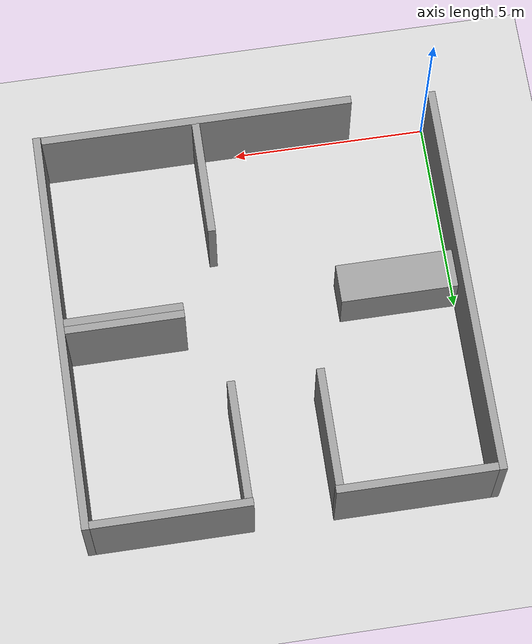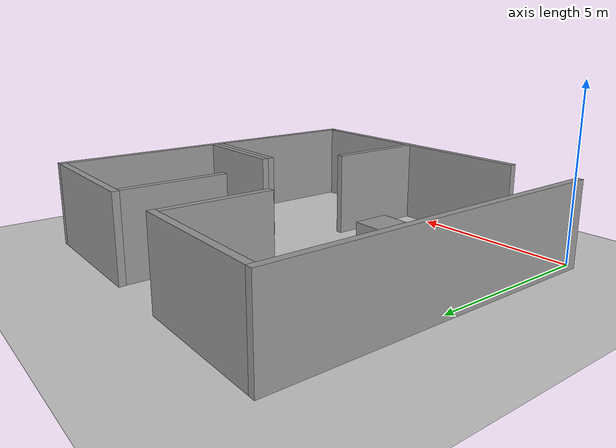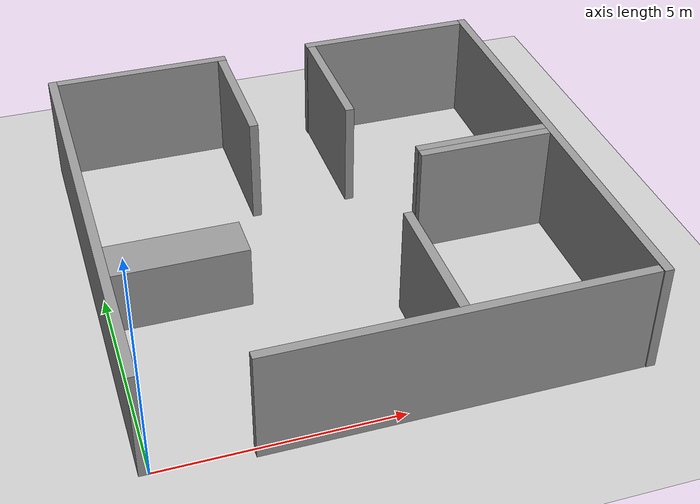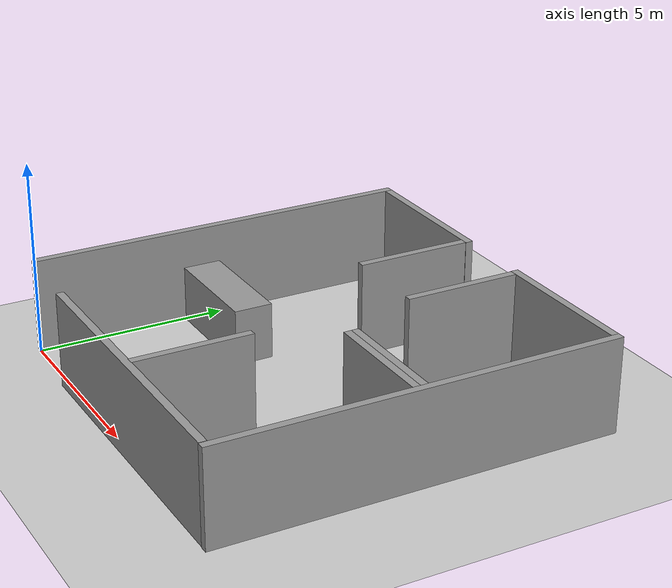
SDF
<sdf version="1.7">
 <world name="default">
  <light name="sun" type="directional">
   <pose>0 0 10 0 -0 0</pose>
   <diffuse>0.8 0.8 0.8 1</diffuse>
   <specular>0.2 0.2 0.2 1</specular>
   <attenuation>
    <range>1000</range>
    <constant>0.9</constant>
    <linear>0.01</linear>
    <quadratic>0.001</quadratic>
   </attenuation>
   <direction>-0.5 0.1 -0.9</direction>
   <spot><inner_angle>0</inner_angle><outer_angle>0</outer_angle><falloff>0</falloff></spot>
  </light>
  <model name="ground_plane">
   <static>1</static>
   <link name="link">
    <collision name="collision">
     <geometry><plane><normal>0 0 1</normal><size>100 100</size></plane></geometry>
     <surface>
      <contact><collide_bitmask>65535</collide_bitmask></contact>
      <friction><ode><mu>100</mu><mu2>50</mu2></ode></friction>
     </surface>
    </collision>
    <visual name="visual">
     <cast_shadows>0</cast_shadows>
     <geometry><plane><normal>0 0 1</normal><size>100 100</size></plane></geometry>
     <material>
      <script><uri>file://media/materials/scripts/gazebo.material</uri><name>Gazebo/Grey</name></script>
     </material>
    </visual>
   </link>
  </model>
  <gravity>0 0 -9.8</gravity>
  <magnetic_field>6e-06 2.3e-05 -4.2e-05</magnetic_field>
  <atmosphere type="adiabatic"/>
  <physics type="ode">
   <max_step_size>0.001</max_step_size>
   <real_time_factor>1</real_time_factor>
   <real_time_update_rate>1000</real_time_update_rate>
  </physics>
  <scene><ambient>0.4 0.4 0.4 1</ambient><background>0.7 0.7 0.7 1</background><shadows>1</shadows></scene>
  <spherical_coordinates>
   <surface_model>EARTH_WGS84</surface_model>
   <latitude_deg>0</latitude_deg>
   <longitude_deg>0</longitude_deg>
   <elevation>0</elevation>
   <heading_deg>0</heading_deg>
  </spherical_coordinates>
  <model name="grey_wall">
   <link name="link">
    <pose>0 0 1.4 0 -0 0</pose>
    <inertial>
     <mass>1</mass>
     <inertia><ixx>1</ixx><ixy>0</ixy><ixz>0</ixz><iyy>1</iyy><iyz>0</iyz><izz>1</izz></inertia>
    </inertial>
    <visual name="visual">
     <cast_shadows>0</cast_shadows>
     <geometry><box><size>8 0.2 2.5</size></box></geometry>
     <material>
      <script>
       <uri>model://grey_wall/materials/scripts</uri>
       <uri>model://grey_wall/materials/textures</uri>
       <name>vrc/grey_wall</name>
      </script>
      <shader type="pixel"><normal_map>__default__</normal_map></shader>
      <ambient>1 1 1 1</ambient>
      <diffuse>1 1 1 1</diffuse>
      <specular>0 0 0 1</specular>
      <emissive>0 0 0 1</emissive>
     </material>
    </visual>
    <collision name="collision">
     <geometry><box><size>8 0.2 2.5</size></box></geometry>
     <surface>
      <friction>
       <ode><mu>1</mu><mu2>1</mu2><fdir1>0 0 0</fdir1><slip1>0</slip1><slip2>0</slip2></ode>
       <torsional>
        <coefficient>1</coefficient>
        <patch_radius>0</patch_radius>
        <surface_radius>0</surface_radius>
        <use_patch_radius>1</use_patch_radius>
        <ode><slip>0</slip></ode>
       </torsional>
      </friction>
      <bounce><restitution_coefficient>0</restitution_coefficient><threshold>1e+06</threshold></bounce>
      <contact>
       <collide_without_contact>0</collide_without_contact>
       <collide_without_contact_bitmask>1</collide_without_contact_bitmask>
       <collide_bitmask>1</collide_bitmask>
       <ode>
        <soft_cfm>0</soft_cfm>
        <soft_erp>0.2</soft_erp>
        <kp>1e+13</kp>
        <kd>1</kd>
        <max_vel>0.01</max_vel>
        <min_depth>0</min_depth>
       </ode>
       <bullet>
        <split_impulse>1</split_impulse>
        <split_impulse_penetration_threshold>-0.01</split_impulse_penetration_threshold>
        <soft_cfm>0</soft_cfm>
        <soft_erp>0.2</soft_erp>
        <kp>1e+13</kp>
        <kd>1</kd>
       </bullet>
      </contact>
     </surface>
    </collision>
   </link>
   <static>1</static>
   <pose>5.96877 -0.088038 -0.2 0 -0 0</pose>
  </model>
  <model name="grey_wall_clone_clone_1_clone_0">
   <link name="link">
    <pose>0 0 1.4 0 -0 0</pose>
    <inertial>
     <mass>1</mass>
     <inertia><ixx>1</ixx><ixy>0</ixy><ixz>0</ixz><iyy>1</iyy><iyz>0</iyz><izz>1</izz></inertia>
    </inertial>
    <visual name="visual">
     <cast_shadows>0</cast_shadows>
     <geometry><box><size>3 0.2 2.5</size></box></geometry>
     <material>
      <script>
       <uri>model://grey_wall/materials/scripts</uri>
       <uri>model://grey_wall/materials/textures</uri>
       <name>vrc/grey_wall</name>
      </script>
      <shader type="pixel"><normal_map>__default__</normal_map></shader>
      <ambient>1 1 1 1</ambient>
      <diffuse>1 1 1 1</diffuse>
      <specular>0 0 0 1</specular>
      <emissive>0 0 0 1</emissive>
     </material>
    </visual>
    <collision name="collision">
     <geometry><box><size>3 0.2 2.5</size></box></geometry>
     <surface>
      <friction>
       <ode><mu>1</mu><mu2>1</mu2><fdir1>0 0 0</fdir1><slip1>0</slip1><slip2>0</slip2></ode>
       <torsional>
        <coefficient>1</coefficient>
        <patch_radius>0</patch_radius>
        <surface_radius>0</surface_radius>
        <use_patch_radius>1</use_patch_radius>
        <ode><slip>0</slip></ode>
       </torsional>
      </friction>
      <bounce><restitution_coefficient>0</restitution_coefficient><threshold>1e+06</threshold></bounce>
      <contact>
       <collide_without_contact>0</collide_without_contact>
       <collide_without_contact_bitmask>1</collide_without_contact_bitmask>
       <collide_bitmask>1</collide_bitmask>
       <ode>
        <soft_cfm>0</soft_cfm>
        <soft_erp>0.2</soft_erp>
        <kp>1e+13</kp>
        <kd>1</kd>
        <max_vel>0.01</max_vel>
        <min_depth>0</min_depth>
       </ode>
       <bullet>
        <split_impulse>1</split_impulse>
        <split_impulse_penetration_threshold>-0.01</split_impulse_penetration_threshold>
        <soft_cfm>0</soft_cfm>
        <soft_erp>0.2</soft_erp>
        <kp>1e+13</kp>
        <kd>1</kd>
       </bullet>
      </contact>
     </surface>
    </collision>
   </link>
   <static>1</static>
   <pose>6.01231 1.49522 -0.2 0 -0 1.57</pose>
  </model>
  <model name="grey_wall_clone_clone_1_clone_1">
   <link name="link">
    <pose>0 0 1.4 0 -0 0</pose>
    <inertial>
     <mass>1</mass>
     <inertia><ixx>1</ixx><ixy>0</ixy><ixz>0</ixz><iyy>1</iyy><iyz>0</iyz><izz>1</izz></inertia>
    </inertial>
    <visual name="visual">
     <cast_shadows>0</cast_shadows>
     <geometry><box><size>3 0.2 2.5</size></box></geometry>
     <material>
      <script>
       <uri>model://grey_wall/materials/scripts</uri>
       <uri>model://grey_wall/materials/textures</uri>
       <name>vrc/grey_wall</name>
      </script>
      <shader type="pixel"><normal_map>__default__</normal_map></shader>
      <ambient>1 1 1 1</ambient>
      <diffuse>1 1 1 1</diffuse>
      <specular>0 0 0 1</specular>
      <emissive>0 0 0 1</emissive>
     </material>
    </visual>
    <collision name="collision">
     <geometry><box><size>3 0.2 2.5</size></box></geometry>
     <surface>
      <friction>
       <ode><mu>1</mu><mu2>1</mu2><fdir1>0 0 0</fdir1><slip1>0</slip1><slip2>0</slip2></ode>
       <torsional>
        <coefficient>1</coefficient>
        <patch_radius>0</patch_radius>
        <surface_radius>0</surface_radius>
        <use_patch_radius>1</use_patch_radius>
        <ode><slip>0</slip></ode>
       </torsional>
      </friction>
      <bounce><restitution_coefficient>0</restitution_coefficient><threshold>1e+06</threshold></bounce>
      <contact>
       <collide_without_contact>0</collide_without_contact>
       <collide_without_contact_bitmask>1</collide_without_contact_bitmask>
       <collide_bitmask>1</collide_bitmask>
       <ode>
        <soft_cfm>0</soft_cfm>
        <soft_erp>0.2</soft_erp>
        <kp>1e+13</kp>
        <kd>1</kd>
        <max_vel>0.01</max_vel>
        <min_depth>0</min_depth>
       </ode>
       <bullet>
        <split_impulse>1</split_impulse>
        <split_impulse_penetration_threshold>-0.01</split_impulse_penetration_threshold>
        <soft_cfm>0</soft_cfm>
        <soft_erp>0.2</soft_erp>
        <kp>1e+13</kp>
        <kd>1</kd>
       </bullet>
      </contact>
     </surface>
    </collision>
   </link>
   <static>1</static>
   <pose>3.88915 8.50009 -0.2 0 -0 1.57</pose>
  </model>
  <model name="grey_wall_clone_clone_0">
   <link name="link">
    <pose>0 0 1.4 0 -0 0</pose>
    <inertial>
     <mass>1</mass>
     <inertia><ixx>1</ixx><ixy>0</ixy><ixz>0</ixz><iyy>1</iyy><iyz>0</iyz><izz>1</izz></inertia>
    </inertial>
    <visual name="visual">
     <cast_shadows>0</cast_shadows>
     <geometry><box><size>4 0.2 2.5</size></box></geometry>
     <material>
      <script>
       <uri>model://grey_wall/materials/scripts</uri>
       <uri>model://grey_wall/materials/textures</uri>
       <name>vrc/grey_wall</name>
      </script>
      <shader type="pixel"><normal_map>__default__</normal_map></shader>
      <ambient>1 1 1 1</ambient>
      <diffuse>1 1 1 1</diffuse>
      <specular>0 0 0 1</specular>
      <emissive>0 0 0 1</emissive>
     </material>
    </visual>
    <collision name="collision">
     <geometry><box><size>4 0.2 2.5</size></box></geometry>
     <surface>
      <friction>
       <ode><mu>1</mu><mu2>1</mu2><fdir1>0 0 0</fdir1><slip1>0</slip1><slip2>0</slip2></ode>
       <torsional>
        <coefficient>1</coefficient>
        <patch_radius>0</patch_radius>
        <surface_radius>0</surface_radius>
        <use_patch_radius>1</use_patch_radius>
        <ode><slip>0</slip></ode>
       </torsional>
      </friction>
      <bounce><restitution_coefficient>0</restitution_coefficient><threshold>1e+06</threshold></bounce>
      <contact>
       <collide_without_contact>0</collide_without_contact>
       <collide_without_contact_bitmask>1</collide_without_contact_bitmask>
       <collide_bitmask>1</collide_bitmask>
       <ode>
        <soft_cfm>0</soft_cfm>
        <soft_erp>0.2</soft_erp>
        <kp>1e+13</kp>
        <kd>1</kd>
        <max_vel>0.01</max_vel>
        <min_depth>0</min_depth>
       </ode>
       <bullet>
        <split_impulse>1</split_impulse>
        <split_impulse_penetration_threshold>-0.01</split_impulse_penetration_threshold>
        <soft_cfm>0</soft_cfm>
        <soft_erp>0.2</soft_erp>
        <kp>1e+13</kp>
        <kd>1</kd>
       </bullet>
      </contact>
     </surface>
    </collision>
   </link>
   <static>1</static>
   <pose>2 10.1 -0.2 0 -0 0</pose>
  </model>
  <model name="grey_wall_clone_clone_0_clone">
   <link name="link">
    <pose>0 0 1.4 0 -0 0</pose>
    <inertial>
     <mass>1</mass>
     <inertia><ixx>1</ixx><ixy>0</ixy><ixz>0</ixz><iyy>1</iyy><iyz>0</iyz><izz>1</izz></inertia>
    </inertial>
    <visual name="visual">
     <cast_shadows>0</cast_shadows>
     <geometry><box><size>4 0.2 2.5</size></box></geometry>
     <material>
      <script>
       <uri>model://grey_wall/materials/scripts</uri>
       <uri>model://grey_wall/materials/textures</uri>
       <name>vrc/grey_wall</name>
      </script>
      <shader type="pixel"><normal_map>__default__</normal_map></shader>
      <ambient>1 1 1 1</ambient>
      <diffuse>1 1 1 1</diffuse>
      <specular>0 0 0 1</specular>
      <emissive>0 0 0 1</emissive>
     </material>
    </visual>
    <collision name="collision">
     <geometry><box><size>4 0.2 2.5</size></box></geometry>
     <surface>
      <friction>
       <ode><mu>1</mu><mu2>1</mu2><fdir1>0 0 0</fdir1><slip1>0</slip1><slip2>0</slip2></ode>
       <torsional>
        <coefficient>1</coefficient>
        <patch_radius>0</patch_radius>
        <surface_radius>0</surface_radius>
        <use_patch_radius>1</use_patch_radius>
        <ode><slip>0</slip></ode>
       </torsional>
      </friction>
      <bounce><restitution_coefficient>0</restitution_coefficient><threshold>1e+06</threshold></bounce>
      <contact>
       <collide_without_contact>0</collide_without_contact>
       <collide_without_contact_bitmask>1</collide_without_contact_bitmask>
       <collide_bitmask>1</collide_bitmask>
       <ode>
        <soft_cfm>0</soft_cfm>
        <soft_erp>0.2</soft_erp>
        <kp>1e+13</kp>
        <kd>1</kd>
        <max_vel>0.01</max_vel>
        <min_depth>0</min_depth>
       </ode>
       <bullet>
        <split_impulse>1</split_impulse>
        <split_impulse_penetration_threshold>-0.01</split_impulse_penetration_threshold>
        <soft_cfm>0</soft_cfm>
        <soft_erp>0.2</soft_erp>
        <kp>1e+13</kp>
        <kd>1</kd>
       </bullet>
      </contact>
     </surface>
    </collision>
   </link>
   <static>1</static>
   <pose>8 10.1 -0.2 0 -0 0</pose>
  </model>
  <model name="grey_wall_clone_clone_1_clone_1_clone">
   <link name="link">
    <pose>0 0 1.4 0 -0 0</pose>
    <inertial>
     <mass>1</mass>
     <inertia><ixx>1</ixx><ixy>0</ixy><ixz>0</ixz><iyy>1</iyy><iyz>0</iyz><izz>1</izz></inertia>
    </inertial>
    <visual name="visual">
     <cast_shadows>0</cast_shadows>
     <geometry><box><size>3 0.2 2.5</size></box></geometry>
     <material>
      <script>
       <uri>model://grey_wall/materials/scripts</uri>
       <uri>model://grey_wall/materials/textures</uri>
       <name>vrc/grey_wall</name>
      </script>
      <shader type="pixel"><normal_map>__default__</normal_map></shader>
      <ambient>1 1 1 1</ambient>
      <diffuse>1 1 1 1</diffuse>
      <specular>0 0 0 1</specular>
      <emissive>0 0 0 1</emissive>
     </material>
    </visual>
    <collision name="collision">
     <geometry><box><size>3 0.2 2.5</size></box></geometry>
     <surface>
      <friction>
       <ode><mu>1</mu><mu2>1</mu2><fdir1>0 0 0</fdir1><slip1>0</slip1><slip2>0</slip2></ode>
       <torsional>
        <coefficient>1</coefficient>
        <patch_radius>0</patch_radius>
        <surface_radius>0</surface_radius>
        <use_patch_radius>1</use_patch_radius>
        <ode><slip>0</slip></ode>
       </torsional>
      </friction>
      <bounce><restitution_coefficient>0</restitution_coefficient><threshold>1e+06</threshold></bounce>
      <contact>
       <collide_without_contact>0</collide_without_contact>
       <collide_without_contact_bitmask>1</collide_without_contact_bitmask>
       <collide_bitmask>1</collide_bitmask>
       <ode>
        <soft_cfm>0</soft_cfm>
        <soft_erp>0.2</soft_erp>
        <kp>1e+13</kp>
        <kd>1</kd>
        <max_vel>0.01</max_vel>
        <min_depth>0</min_depth>
       </ode>
       <bullet>
        <split_impulse>1</split_impulse>
        <split_impulse_penetration_threshold>-0.01</split_impulse_penetration_threshold>
        <soft_cfm>0</soft_cfm>
        <soft_erp>0.2</soft_erp>
        <kp>1e+13</kp>
        <kd>1</kd>
       </bullet>
      </contact>
     </surface>
    </collision>
   </link>
   <static>1</static>
   <pose>8.49454 4.88926 -0.2 0 -0 0</pose>
  </model>
  <model name="grey_wall_clone_clone_1_clone_1_clone_clone">
   <link name="link">
    <pose>0 0 1.4 0 -0 0</pose>
    <inertial>
     <mass>1</mass>
     <inertia><ixx>1</ixx><ixy>0</ixy><ixz>0</ixz><iyy>1</iyy><iyz>0</iyz><izz>1</izz></inertia>
    </inertial>
    <visual name="visual">
     <cast_shadows>0</cast_shadows>
     <geometry><box><size>3 0.2 2.5</size></box></geometry>
     <material>
      <script>
       <uri>model://grey_wall/materials/scripts</uri>
       <uri>model://grey_wall/materials/textures</uri>
       <name>vrc/grey_wall</name>
      </script>
      <shader type="pixel"><normal_map>__default__</normal_map></shader>
      <ambient>1 1 1 1</ambient>
      <diffuse>1 1 1 1</diffuse>
      <specular>0 0 0 1</specular>
      <emissive>0 0 0 1</emissive>
     </material>
    </visual>
    <collision name="collision">
     <geometry><box><size>3 0.2 2.5</size></box></geometry>
     <surface>
      <friction>
       <ode><mu>1</mu><mu2>1</mu2><fdir1>0 0 0</fdir1><slip1>0</slip1><slip2>0</slip2></ode>
       <torsional>
        <coefficient>1</coefficient>
        <patch_radius>0</patch_radius>
        <surface_radius>0</surface_radius>
        <use_patch_radius>1</use_patch_radius>
        <ode><slip>0</slip></ode>
       </torsional>
      </friction>
      <bounce><restitution_coefficient>0</restitution_coefficient><threshold>1e+06</threshold></bounce>
      <contact>
       <collide_without_contact>0</collide_without_contact>
       <collide_without_contact_bitmask>1</collide_without_contact_bitmask>
       <collide_bitmask>1</collide_bitmask>
       <ode>
        <soft_cfm>0</soft_cfm>
        <soft_erp>0.2</soft_erp>
        <kp>1e+13</kp>
        <kd>1</kd>
        <max_vel>0.01</max_vel>
        <min_depth>0</min_depth>
       </ode>
       <bullet>
        <split_impulse>1</split_impulse>
        <split_impulse_penetration_threshold>-0.01</split_impulse_penetration_threshold>
        <soft_cfm>0</soft_cfm>
        <soft_erp>0.2</soft_erp>
        <kp>1e+13</kp>
        <kd>1</kd>
       </bullet>
      </contact>
     </surface>
    </collision>
   </link>
   <static>1</static>
   <pose>6.11414 8.49926 -0.2 0 -0 1.57</pose>
  </model>
  <model name="grey_wall_clone_clone_1_clone_1_clone_clone_0">
   <link name="link">
    <pose>0 0 1.4 0 -0 0</pose>
    <inertial>
     <mass>1</mass>
     <inertia><ixx>1</ixx><ixy>0</ixy><ixz>0</ixz><iyy>1</iyy><iyz>0</iyz><izz>1</izz></inertia>
    </inertial>
    <visual name="visual">
     <cast_shadows>0</cast_shadows>
     <geometry><box><size>3 0.2 2.5</size></box></geometry>
     <material>
      <script>
       <uri>model://grey_wall/materials/scripts</uri>
       <uri>model://grey_wall/materials/textures</uri>
       <name>vrc/grey_wall</name>
      </script>
      <shader type="pixel"><normal_map>__default__</normal_map></shader>
      <ambient>1 1 1 1</ambient>
      <diffuse>1 1 1 1</diffuse>
      <specular>0 0 0 1</specular>
      <emissive>0 0 0 1</emissive>
     </material>
    </visual>
    <collision name="collision">
     <geometry><box><size>3 0.2 2.5</size></box></geometry>
     <surface>
      <friction>
       <ode><mu>1</mu><mu2>1</mu2><fdir1>0 0 0</fdir1><slip1>0</slip1><slip2>0</slip2></ode>
       <torsional>
        <coefficient>1</coefficient>
        <patch_radius>0</patch_radius>
        <surface_radius>0</surface_radius>
        <use_patch_radius>1</use_patch_radius>
        <ode><slip>0</slip></ode>
       </torsional>
      </friction>
      <bounce><restitution_coefficient>0</restitution_coefficient><threshold>1e+06</threshold></bounce>
      <contact>
       <collide_without_contact>0</collide_without_contact>
       <collide_without_contact_bitmask>1</collide_without_contact_bitmask>
       <collide_bitmask>1</collide_bitmask>
       <ode>
        <soft_cfm>0</soft_cfm>
        <soft_erp>0.2</soft_erp>
        <kp>1e+13</kp>
        <kd>1</kd>
        <max_vel>0.01</max_vel>
        <min_depth>0</min_depth>
       </ode>
       <bullet>
        <split_impulse>1</split_impulse>
        <split_impulse_penetration_threshold>-0.01</split_impulse_penetration_threshold>
        <soft_cfm>0</soft_cfm>
        <soft_erp>0.2</soft_erp>
        <kp>1e+13</kp>
        <kd>1</kd>
       </bullet>
      </contact>
     </surface>
    </collision>
   </link>
   <static>1</static>
   <pose>8.49198 5.08423 -0.2 0 -0 0</pose>
  </model>
  <model name="grey_wall_clone_clone_1">
   <link name="link">
    <pose>0 0 1.4 0 -0 0</pose>
    <inertial>
     <mass>1</mass>
     <inertia><ixx>1</ixx><ixy>0</ixy><ixz>0</ixz><iyy>1</iyy><iyz>0</iyz><izz>1</izz></inertia>
    </inertial>
    <visual name="visual">
     <cast_shadows>0</cast_shadows>
     <geometry><box><size>3 1 1.5</size></box></geometry>
     <material>
      <script>
       <uri>model://grey_wall/materials/scripts</uri>
       <uri>model://grey_wall/materials/textures</uri>
       <name>vrc/grey_wall</name>
      </script>
      <shader type="pixel"><normal_map>__default__</normal_map></shader>
      <ambient>1 1 1 1</ambient>
      <diffuse>1 1 1 1</diffuse>
      <specular>0 0 0 1</specular>
      <emissive>0 0 0 1</emissive>
     </material>
    </visual>
    <collision name="collision">
     <geometry><box><size>3 1 1.5</size></box></geometry>
     <surface>
      <friction>
       <ode><mu>1</mu><mu2>1</mu2><fdir1>0 0 0</fdir1><slip1>0</slip1><slip2>0</slip2></ode>
       <torsional>
        <coefficient>1</coefficient>
        <patch_radius>0</patch_radius>
        <surface_radius>0</surface_radius>
        <use_patch_radius>1</use_patch_radius>
        <ode><slip>0</slip></ode>
       </torsional>
      </friction>
      <bounce><restitution_coefficient>0</restitution_coefficient><threshold>1e+06</threshold></bounce>
      <contact>
       <collide_without_contact>0</collide_without_contact>
       <collide_without_contact_bitmask>1</collide_without_contact_bitmask>
       <collide_bitmask>1</collide_bitmask>
       <ode>
        <soft_cfm>0</soft_cfm>
        <soft_erp>0.2</soft_erp>
        <kp>1e+13</kp>
        <kd>1</kd>
        <max_vel>0.01</max_vel>
        <min_depth>0</min_depth>
       </ode>
       <bullet>
        <split_impulse>1</split_impulse>
        <split_impulse_penetration_threshold>-0.01</split_impulse_penetration_threshold>
        <soft_cfm>0</soft_cfm>
        <soft_erp>0.2</soft_erp>
        <kp>1e+13</kp>
        <kd>1</kd>
       </bullet>
      </contact>
     </surface>
    </collision>
   </link>
   <static>1</static>
   <pose>1.5 4.5 -0.7 0 -0 0</pose>
  </model>
  <model name="grey_wall_clone">
   <link name="link">
    <pose>0 0 1.4 0 -0 0</pose>
    <inertial>
     <mass>1</mass>
     <inertia><ixx>1</ixx><ixy>0</ixy><ixz>0</ixz><iyy>1</iyy><iyz>0</iyz><izz>1</izz></inertia>
    </inertial>
    <visual name="visual">
     <cast_shadows>0</cast_shadows>
     <geometry><box><size>10.2 0.2 2.5</size></box></geometry>
     <material>
      <script>
       <uri>model://grey_wall/materials/scripts</uri>
       <uri>model://grey_wall/materials/textures</uri>
       <name>vrc/grey_wall</name>
      </script>
      <shader type="pixel"><normal_map>__default__</normal_map></shader>
      <ambient>1 1 1 1</ambient>
      <diffuse>1 1 1 1</diffuse>
      <specular>0 0 0 1</specular>
      <emissive>0 0 0 1</emissive>
     </material>
    </visual>
    <collision name="collision">
     <geometry><box><size>10.2 0.2 2.5</size></box></geometry>
     <surface>
      <friction>
       <ode><mu>1</mu><mu2>1</mu2><fdir1>0 0 0</fdir1><slip1>0</slip1><slip2>0</slip2></ode>
       <torsional>
        <coefficient>1</coefficient>
        <patch_radius>0</patch_radius>
        <surface_radius>0</surface_radius>
        <use_patch_radius>1</use_patch_radius>
        <ode><slip>0</slip></ode>
       </torsional>
      </friction>
      <bounce><restitution_coefficient>0</restitution_coefficient><threshold>1e+06</threshold></bounce>
      <contact>
       <collide_without_contact>0</collide_without_contact>
       <collide_without_contact_bitmask>1</collide_without_contact_bitmask>
       <collide_bitmask>1</collide_bitmask>
       <ode>
        <soft_cfm>0</soft_cfm>
        <soft_erp>0.2</soft_erp>
        <kp>1e+13</kp>
        <kd>1</kd>
        <max_vel>0.01</max_vel>
        <min_depth>0</min_depth>
       </ode>
       <bullet>
        <split_impulse>1</split_impulse>
        <split_impulse_penetration_threshold>-0.01</split_impulse_penetration_threshold>
        <soft_cfm>0</soft_cfm>
        <soft_erp>0.2</soft_erp>
        <kp>1e+13</kp>
        <kd>1</kd>
       </bullet>
      </contact>
     </surface>
    </collision>
   </link>
   <static>1</static>
   <pose>-0.1 5.1 -0.2 0 -0 1.57</pose>
  </model>
  <model name="grey_wall_clone_clone">
   <link name="link">
    <pose>0 0 1.4 0 -0 0</pose>
    <inertial>
     <mass>1</mass>
     <inertia><ixx>1</ixx><ixy>0</ixy><ixz>0</ixz><iyy>1</iyy><iyz>0</iyz><izz>1</izz></inertia>
    </inertial>
    <visual name="visual">
     <cast_shadows>0</cast_shadows>
     <geometry><box><size>10.4 0.2 2.5</size></box></geometry>
     <material>
      <script>
       <uri>model://grey_wall/materials/scripts</uri>
       <uri>model://grey_wall/materials/textures</uri>
       <name>vrc/grey_wall</name>
      </script>
      <shader type="pixel"><normal_map>__default__</normal_map></shader>
      <ambient>1 1 1 1</ambient>
      <diffuse>1 1 1 1</diffuse>
      <specular>0 0 0 1</specular>
      <emissive>0 0 0 1</emissive>
     </material>
    </visual>
    <collision name="collision">
     <geometry><box><size>10.4 0.2 2.5</size></box></geometry>
     <surface>
      <friction>
       <ode><mu>1</mu><mu2>1</mu2><fdir1>0 0 0</fdir1><slip1>0</slip1><slip2>0</slip2></ode>
       <torsional>
        <coefficient>1</coefficient>
        <patch_radius>0</patch_radius>
        <surface_radius>0</surface_radius>
        <use_patch_radius>1</use_patch_radius>
        <ode><slip>0</slip></ode>
       </torsional>
      </friction>
      <bounce><restitution_coefficient>0</restitution_coefficient><threshold>1e+06</threshold></bounce>
      <contact>
       <collide_without_contact>0</collide_without_contact>
       <collide_without_contact_bitmask>1</collide_without_contact_bitmask>
       <collide_bitmask>1</collide_bitmask>
       <ode>
        <soft_cfm>0</soft_cfm>
        <soft_erp>0.2</soft_erp>
        <kp>1e+13</kp>
        <kd>1</kd>
        <max_vel>0.01</max_vel>
        <min_depth>0</min_depth>
       </ode>
       <bullet>
        <split_impulse>1</split_impulse>
        <split_impulse_penetration_threshold>-0.01</split_impulse_penetration_threshold>
        <soft_cfm>0</soft_cfm>
        <soft_erp>0.2</soft_erp>
        <kp>1e+13</kp>
        <kd>1</kd>
       </bullet>
      </contact>
     </surface>
    </collision>
   </link>
   <static>1</static>
   <pose>10.0872 5 -0.2 0 -0 1.57</pose>
  </model>
 </world>
</sdf>
